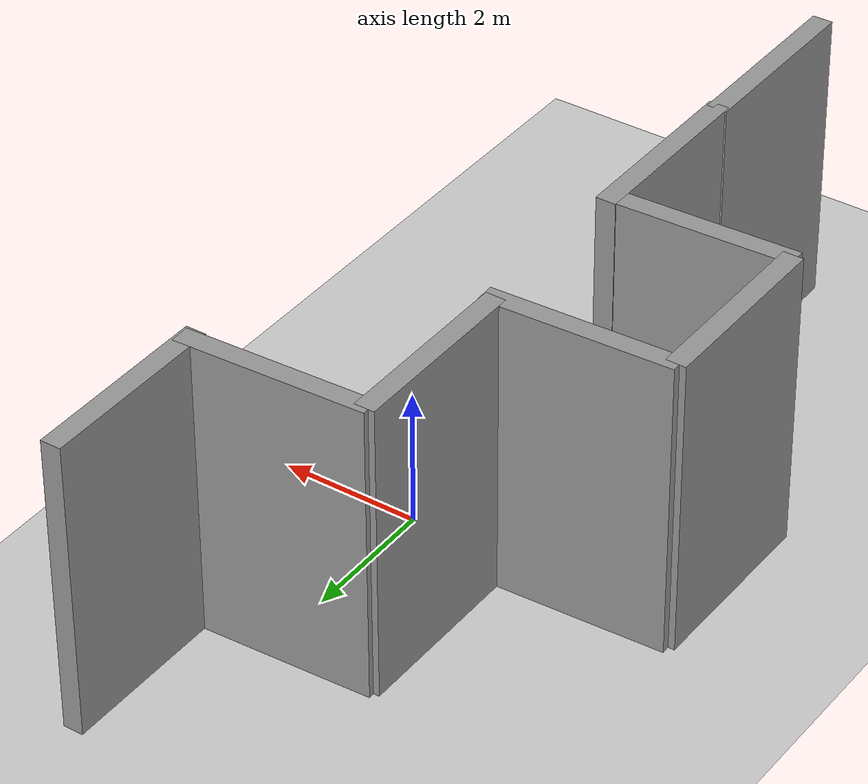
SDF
<sdf version="1.7">
 <world name="default">
  <light name="sun" type="directional">
   <pose>0 0 10 0 -0 0</pose>
   <diffuse>0.8 0.8 0.8 1</diffuse>
   <specular>0.2 0.2 0.2 1</specular>
   <attenuation>
    <range>1000</range>
    <constant>0.9</constant>
    <linear>0.01</linear>
    <quadratic>0.001</quadratic>
   </attenuation>
   <direction>-0.5 0.1 -0.9</direction>
   <spot><inner_angle>0</inner_angle><outer_angle>0</outer_angle><falloff>0</falloff></spot>
  </light>
  <model name="ground_plane">
   <static>1</static>
   <link name="link">
    <collision name="collision">
     <geometry><plane><normal>0 0 1</normal><size>100 100</size></plane></geometry>
     <surface>
      <contact><collide_bitmask>65535</collide_bitmask></contact>
      <friction><ode><mu>100</mu><mu2>50</mu2></ode></friction>
     </surface>
    </collision>
    <visual name="visual">
     <cast_shadows>0</cast_shadows>
     <geometry><plane><normal>0 0 1</normal><size>100 100</size></plane></geometry>
     <material>
      <script><uri>file://media/materials/scripts/gazebo.material</uri><name>Gazebo/Grey</name></script>
     </material>
    </visual>
   </link>
  </model>
  <gravity>0 0 -9.8</gravity>
  <magnetic_field>6e-06 2.3e-05 -4.2e-05</magnetic_field>
  <atmosphere type="adiabatic"/>
  <physics type="ode">
   <max_step_size>0.001</max_step_size>
   <real_time_factor>1</real_time_factor>
   <real_time_update_rate>1000</real_time_update_rate>
  </physics>
  <scene><ambient>0.4 0.4 0.4 1</ambient><background>0.7 0.7 0.7 1</background><shadows>1</shadows></scene>
  <spherical_coordinates>
   <surface_model>EARTH_WGS84</surface_model>
   <latitude_deg>0</latitude_deg>
   <longitude_deg>0</longitude_deg>
   <elevation>0</elevation>
   <heading_deg>0</heading_deg>
  </spherical_coordinates>
  <model name="unit_box">
   <pose>-3.97283 -1.08014 2.00263 0 -0 0</pose>
   <link name="link">
    <inertial>
     <mass>1</mass>
     <inertia>
      <ixx>0.166667</ixx>
      <ixy>0</ixy>
      <ixz>0</ixz>
      <iyy>0.166667</iyy>
      <iyz>0</iyz>
      <izz>0.166667</izz>
     </inertia>
    </inertial>
    <collision name="collision"><geometry><box><size>0.288122 2.69837 4.59967</size></box></geometry></collision>
    <visual name="visual">
     <geometry><box><size>0.288122 2.69837 4.59967</size></box></geometry>
     <material>
      <script><name>Gazebo/Grey</name><uri>file://media/materials/scripts/gazebo.material</uri></script>
     </material>
    </visual>
   </link>
  </model>
  <model name="unit_box_clone">
   <pose>-2.67466 0.299748 2.00263 0 0 -1.52953</pose>
   <link name="link">
    <inertial>
     <mass>1</mass>
     <inertia>
      <ixx>0.166667</ixx>
      <ixy>0</ixy>
      <ixz>0</ixz>
      <iyy>0.166667</iyy>
      <iyz>0</iyz>
      <izz>0.166667</izz>
     </inertia>
    </inertial>
    <collision name="collision"><geometry><box><size>0.288122 2.69837 4.59967</size></box></geometry></collision>
    <visual name="visual">
     <geometry><box><size>0.288122 2.69837 4.59967</size></box></geometry>
     <material>
      <script><name>Gazebo/Grey</name><uri>file://media/materials/scripts/gazebo.material</uri></script>
     </material>
    </visual>
   </link>
  </model>
  <model name="unit_box_clone_0">
   <pose>-1.4806 1.67999 2.00263 0 -0 0</pose>
   <link name="link">
    <inertial>
     <mass>1</mass>
     <inertia>
      <ixx>0.166667</ixx>
      <ixy>0</ixy>
      <ixz>0</ixz>
      <iyy>0.166667</iyy>
      <iyz>0</iyz>
      <izz>0.166667</izz>
     </inertia>
    </inertial>
    <collision name="collision"><geometry><box><size>0.288122 2.69837 4.59967</size></box></geometry></collision>
    <visual name="visual">
     <geometry><box><size>0.288122 2.69837 4.59967</size></box></geometry>
     <material>
      <script><name>Gazebo/Grey</name><uri>file://media/materials/scripts/gazebo.material</uri></script>
     </material>
    </visual>
   </link>
  </model>
  <model name="unit_box_clone_clone">
   <pose>-0.185868 3.02723 2.00263 0 0 -1.52953</pose>
   <link name="link">
    <inertial>
     <mass>1</mass>
     <inertia>
      <ixx>0.166667</ixx>
      <ixy>0</ixy>
      <ixz>0</ixz>
      <iyy>0.166667</iyy>
      <iyz>0</iyz>
      <izz>0.166667</izz>
     </inertia>
    </inertial>
    <collision name="collision"><geometry><box><size>0.288122 2.69837 4.59967</size></box></geometry></collision>
    <visual name="visual">
     <geometry><box><size>0.288122 2.69837 4.59967</size></box></geometry>
     <material>
      <script><name>Gazebo/Grey</name><uri>file://media/materials/scripts/gazebo.material</uri></script>
     </material>
    </visual>
   </link>
  </model>
  <model name="unit_box_clone_0_clone">
   <pose>1.04611 4.25887 2.00263 0 -0 0</pose>
   <link name="link">
    <inertial>
     <mass>1</mass>
     <inertia>
      <ixx>0.166667</ixx>
      <ixy>0</ixy>
      <ixz>0</ixz>
      <iyy>0.166667</iyy>
      <iyz>0</iyz>
      <izz>0.166667</izz>
     </inertia>
    </inertial>
    <collision name="collision"><geometry><box><size>0.288122 2.69837 4.59967</size></box></geometry></collision>
    <visual name="visual">
     <geometry><box><size>0.288122 2.69837 4.59967</size></box></geometry>
     <material>
      <script><name>Gazebo/Grey</name><uri>file://media/materials/scripts/gazebo.material</uri></script>
     </material>
    </visual>
   </link>
  </model>
  <model name="unit_box_clone_clone_0">
   <pose>-2.68871 -2.33541 2.00263 0 0 -1.52953</pose>
   <link name="link">
    <inertial>
     <mass>1</mass>
     <inertia>
      <ixx>0.166667</ixx>
      <ixy>0</ixy>
      <ixz>0</ixz>
      <iyy>0.166667</iyy>
      <iyz>0</iyz>
      <izz>0.166667</izz>
     </inertia>
    </inertial>
    <collision name="collision"><geometry><box><size>0.288122 2.69837 4.59967</size></box></geometry></collision>
    <visual name="visual">
     <geometry><box><size>0.288122 2.69837 4.59967</size></box></geometry>
     <material>
      <script><name>Gazebo/Grey</name><uri>file://media/materials/scripts/gazebo.material</uri></script>
     </material>
    </visual>
   </link>
  </model>
  <model name="unit_box_clone_1">
   <pose>-1.4499 -3.48207 2.00263 0 -0 0</pose>
   <link name="link">
    <inertial>
     <mass>1</mass>
     <inertia>
      <ixx>0.166667</ixx>
      <ixy>0</ixy>
      <ixz>0</ixz>
      <iyy>0.166667</iyy>
      <iyz>0</iyz>
      <izz>0.166667</izz>
     </inertia>
    </inertial>
    <collision name="collision"><geometry><box><size>0.288122 2.69837 4.59967</size></box></geometry></collision>
    <visual name="visual">
     <geometry><box><size>0.288122 2.69837 4.59967</size></box></geometry>
     <material>
      <script><name>Gazebo/Grey</name><uri>file://media/materials/scripts/gazebo.material</uri></script>
     </material>
    </visual>
   </link>
  </model>
  <model name="unit_box_clone_1_clone">
   <pose>-1.47356 -6.07381 2.00263 0 -0 0</pose>
   <link name="link">
    <inertial>
     <mass>1</mass>
     <inertia>
      <ixx>0.166667</ixx>
      <ixy>0</ixy>
      <ixz>0</ixz>
      <iyy>0.166667</iyy>
      <iyz>0</iyz>
      <izz>0.166667</izz>
     </inertia>
    </inertial>
    <collision name="collision"><geometry><box><size>0.288122 2.69837 4.59967</size></box></geometry></collision>
    <visual name="visual">
     <geometry><box><size>0.288122 2.69837 4.59967</size></box></geometry>
     <material>
      <script><name>Gazebo/Grey</name><uri>file://media/materials/scripts/gazebo.material</uri></script>
     </material>
    </visual>
   </link>
  </model>
 </world>
</sdf>
